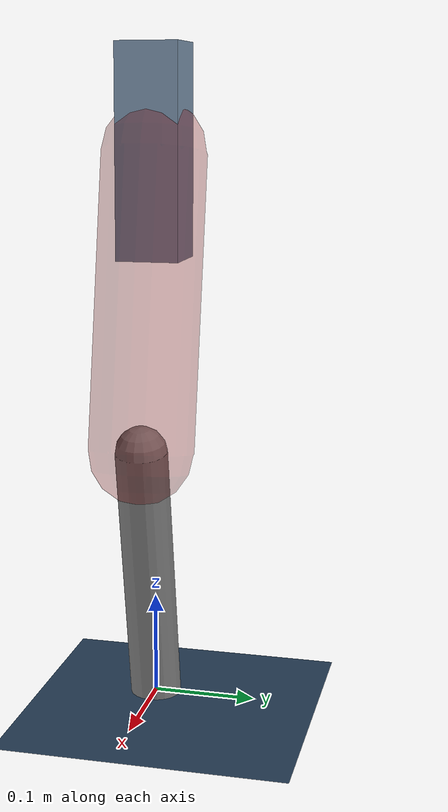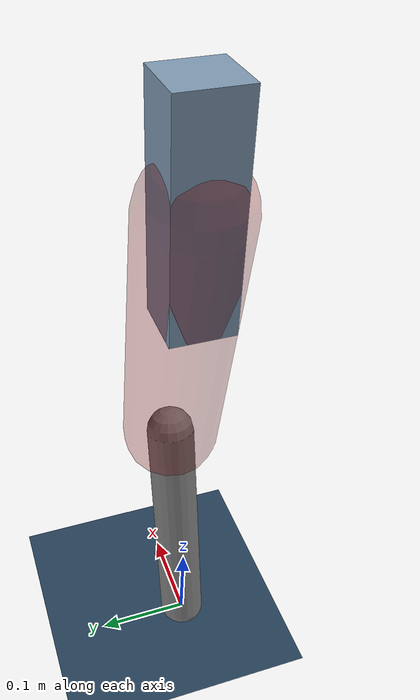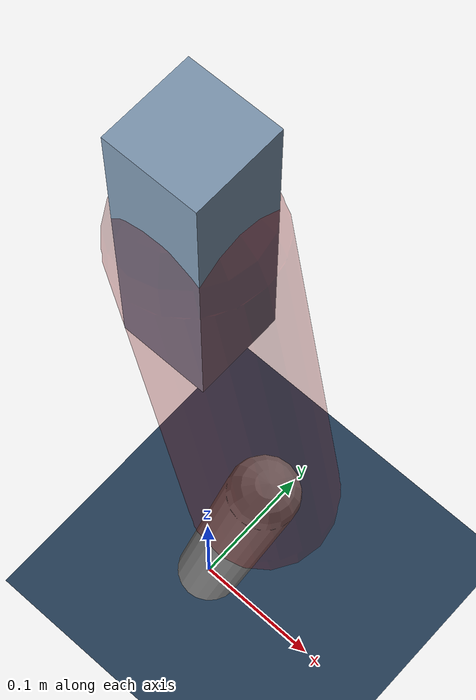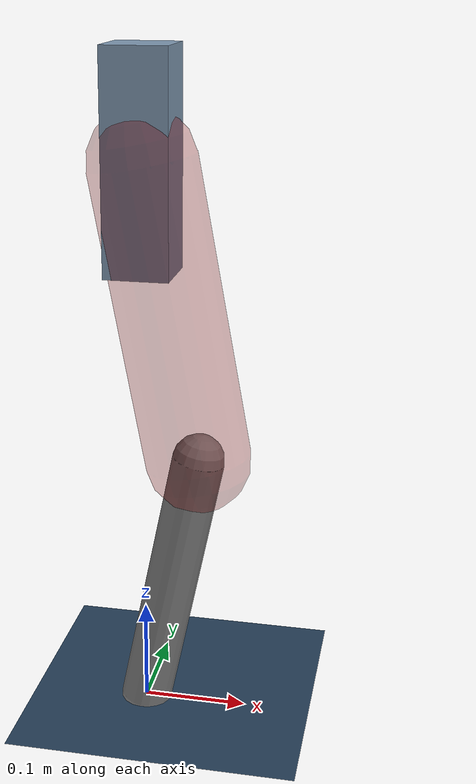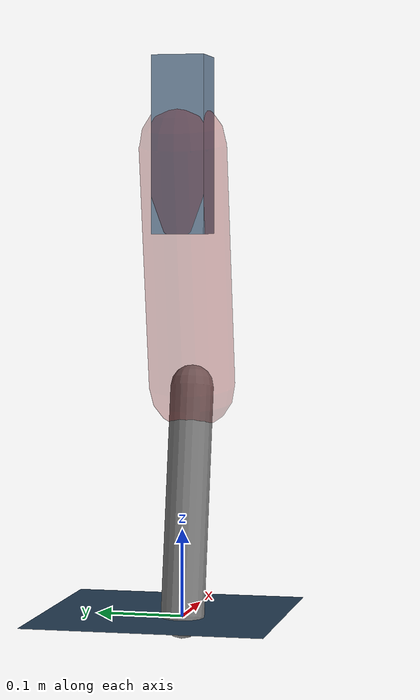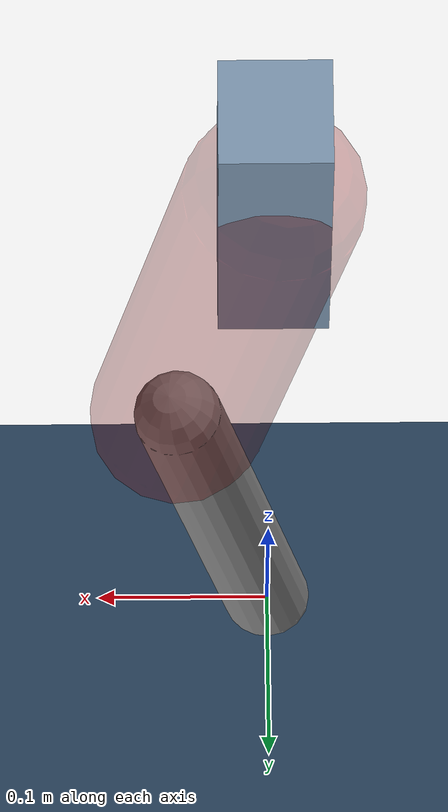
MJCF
<mujoco model="Hopper2D">
	<compiler inertiafromgeom="true" angle="radian" />
	<option timestep="0.001" integrator="implicit" cone="elliptic" solver="Newton" tolerance="1e-10" />

	<default>
		<geom contype="1" conaffinity="1" condim="3" friction="2 0.005 0.0001" solref="0.005 1" />
		<joint limited="true" damping="0.1" />
	</default>

	<asset>
		<texture name="skybox" type="skybox" builtin="gradient" rgb1=".4 .6 .8" rgb2="0 0 0" width="800" height="800" />
		<texture name="grid" type="2d" builtin="checker" rgb1=".1 .2 .3" rgb2=".2 .3 .4" width="300" height="300" mark="edge" markrgb=".2 .3 .4" />
		<material name="ground" texture="grid" texrepeat="1 1" texuniform="true" reflectance="0.1" />
		<material name="leg" rgba="0.5 0.6 0.7 1" />
	</asset>

	<worldbody>

		<geom name="floor" type="plane" size="5 5 0.25" material="ground" />

		<light directional="false" diffuse="0.8 0.8 0.8" specular="0.3 0.3 0.3" pos="0 0 2" dir="0 0 -1" />
		<light mode="targetbodycom" target="base" directional="false" diffuse="0.8 0.8 0.8" specular="0.3 0.3 0.3" pos="0 0 2" dir="0 0 -1" />

		<camera name="fixed" pos="0 -2 1" xyaxes="1 0 0 0 0 1" />
		<camera name="tracking" mode="trackcom" pos="0 -3 1" />

		<body name="root" pos="0 0 0.5363735269251443">
			<joint name="slide_x" type="slide" axis="1 0 0" range="-100 100" />
			<joint name="slide_z" type="slide" axis="0 0 1" range="0 10" />

			<body name="base" pos="0 0 0">
				<geom name="torso" type="box" size="0.03 0.03 0.1" mass="3.5469999999999997" material="leg" />

				<body name="link1" pos="0 0 0" euler="0 1.3847413305569756 0">
					<joint type="hinge" axis="0 -1 0" pos="0 0 0" name="hinge1" limited="true" range="-3.14 3.14" stiffness="0" damping="0.1" />
					<geom name="thigh" type="capsule" fromto="0 0 0 0.28113183708505485 0 0" size="0.05" rgba="0.5 0 0 0.3" mass="0.9381427764211425" />

					<body name="link2" pos="0.28113183708505485 0 0" euler="0 0.38339886294456016 0">
						<joint type="hinge" axis="0 -1 0" pos="0 0 0" name="hinge2" limited="true" range="-3.14 3.14" stiffness="0" damping="0.1" />
						<geom name="shank" type="capsule" fromto="0 0 0 0.26524168984008945 0 0" size="0.025" mass="0.45509335187207156" />

					</body>
				</body>
			</body>
		</body>
	</worldbody>

	<actuator>
		<motor name="torque1" joint="hinge1" ctrlrange="-188.82433989635663 188.82433989635663" ctrllimited="true" gear="1" />
		<motor name="torque2" joint="hinge2" ctrlrange="-112.22918228714403 112.22918228714403" ctrllimited="true" gear="1" />
	</actuator>
</mujoco>
